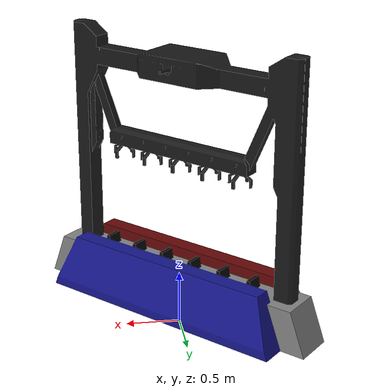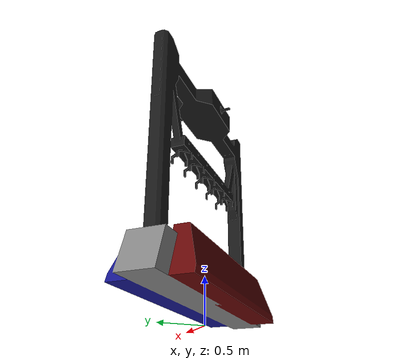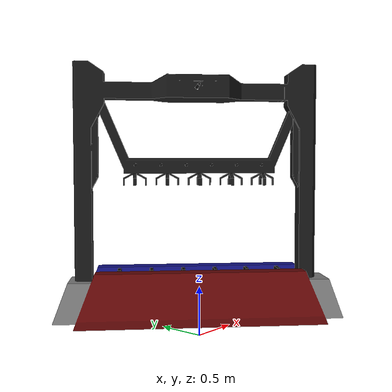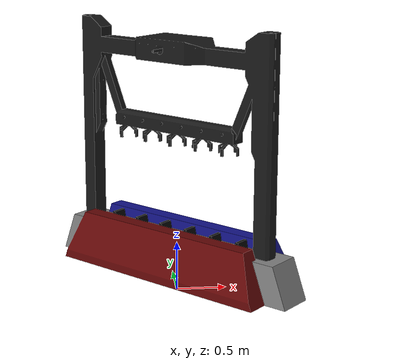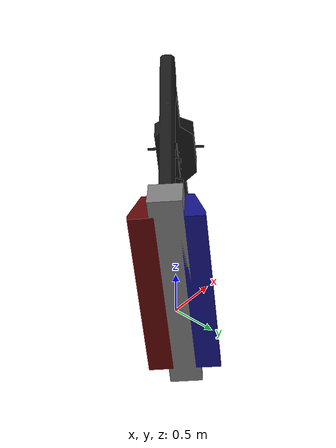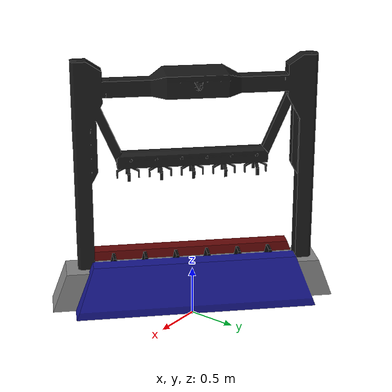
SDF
<?xml version="1.0" encoding="UTF-8"?>
<!-- |    This document was autogenerated by xacro4sdf from model.sdf.xacro            | -->
<!-- |    EDITING THIS FILE BY HAND IS NOT RECOMMENDED                                 | -->
<sdf version="1.7">
	<!--macro defination:rmuc21_resource_island-->
	<model name="rmuc21_resource_island">
		<static>1</static>
		<link name="resource_island">
			<pose>0 0 0 0 0 0.7854</pose>
			<visual name="base_visual">
				<geometry>
					<mesh>
						<uri>model://rmuc21_resource_island/meshes/resource_island_base.dae</uri>
					</mesh>
				</geometry>
			</visual>
			<collision name="base_collision">
				<geometry>
					<mesh>
						<uri>model://rmuc21_resource_island/meshes/resource_island_base.dae</uri>
					</mesh>
				</geometry>
			</collision>
			<visual name="holder_visual">
				<geometry>
					<mesh>
						<uri>model://rmuc21_resource_island/meshes/resource_island_holder.dae</uri>
					</mesh>
				</geometry>
			</visual>
			<collision name="holder_collision">
				<geometry>
					<mesh>
						<uri>model://rmuc21_resource_island/meshes/resource_island_holder.dae</uri>
					</mesh>
				</geometry>
			</collision>
		</link>
	</model>
</sdf>
